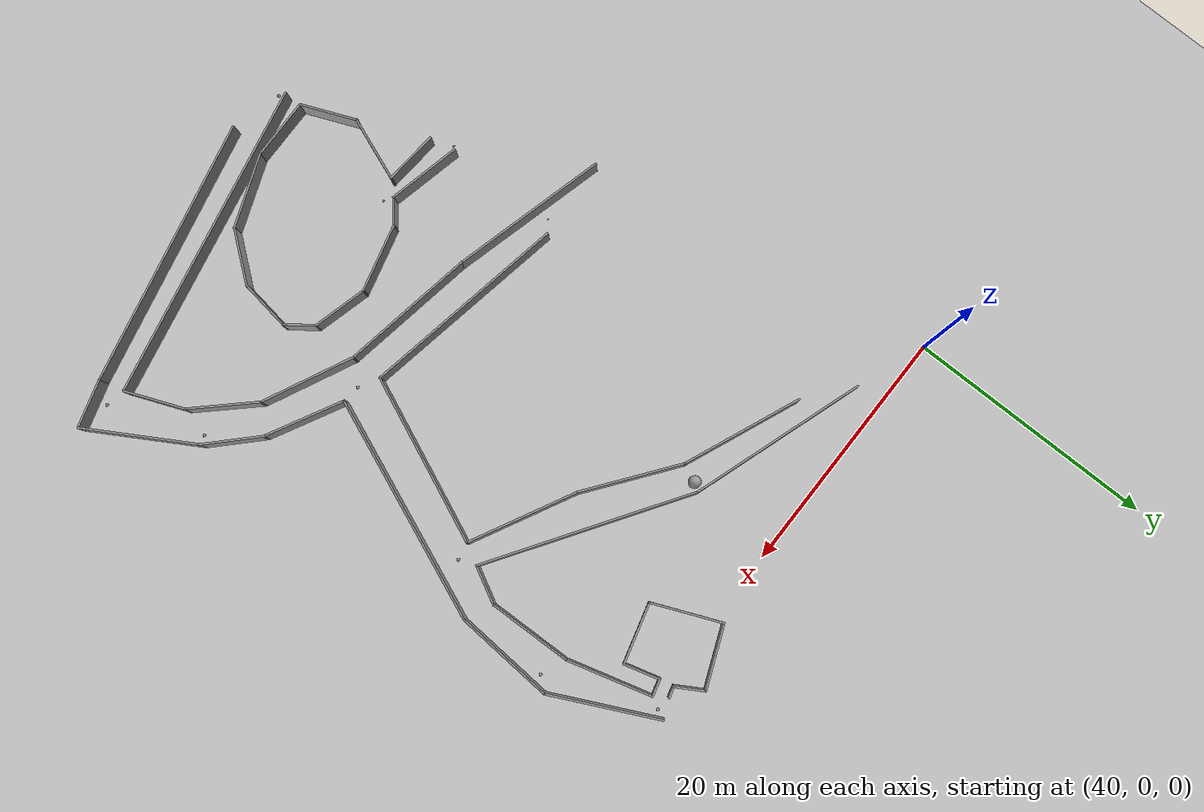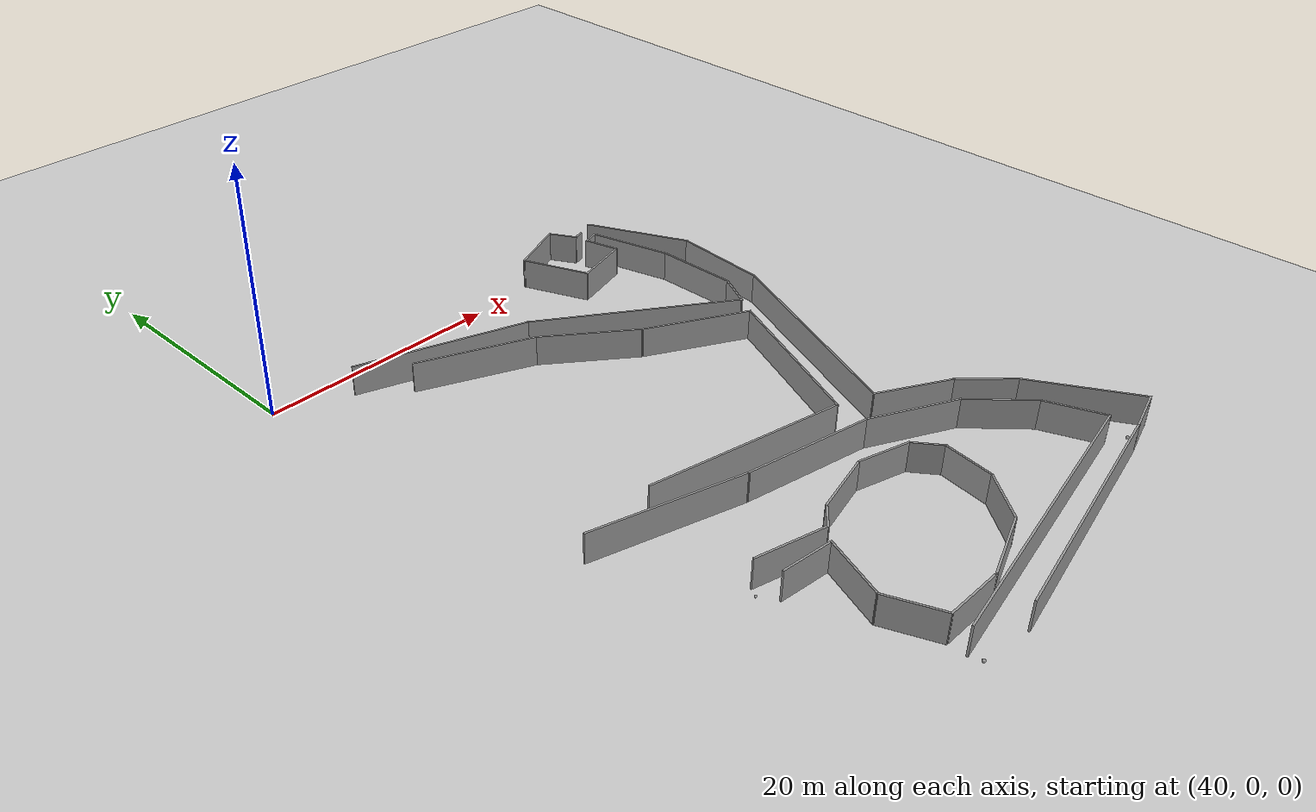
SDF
<sdf version="1.7">
 <world name="default">
  <model name="ground_plane">
   <static>1</static>
   <link name="link">
    <collision name="collision">
     <geometry><plane><normal>0 0 1</normal><size>100 100</size></plane></geometry>
     <surface><friction><ode><mu>100</mu><mu2>50</mu2></ode></friction></surface>
    </collision>
    <visual name="visual">
     <cast_shadows>0</cast_shadows>
     <geometry><plane><normal>0 0 1</normal><size>100 100</size></plane></geometry>
     <material>
      <script><uri>file://media/materials/scripts/gazebo.material</uri><name>Gazebo/Grey</name></script>
     </material>
    </visual>
   </link>
  </model>
  <model name="final_max_v1">
   <pose>-2.5231 0.6891 0 0 -0 0</pose>
   <link name="Wall_131">
    <collision name="Wall_131_Collision">
     <geometry><box><size>16.551 0.15 2.5</size></box></geometry>
     <pose>0 0 1.25 0 -0 0</pose>
    </collision>
    <visual name="Wall_131_Visual">
     <pose>0 0 1.25 0 -0 0</pose>
     <geometry><box><size>16.551 0.15 2.5</size></box></geometry>
     <material>
      <script><uri>file://media/materials/scripts/gazebo.material</uri><name>Gazebo/Grey</name></script>
      <ambient>1 1 1 1</ambient>
     </material>
     <meta><layer>0</layer></meta>
    </visual>
    <pose>61.4597 -29.6539 0 0 -0 2.9497</pose>
   </link>
   <link name="Wall_137">
    <collision name="Wall_137_Collision">
     <geometry><box><size>9.83843 0.15 2.5</size></box></geometry>
     <pose>0 0 1.25 0 -0 0</pose>
    </collision>
    <visual name="Wall_137_Visual">
     <pose>0 0 1.25 0 -0 0</pose>
     <geometry><box><size>9.83843 0.15 2.5</size></box></geometry>
     <material>
      <script><uri>file://media/materials/scripts/gazebo.material</uri><name>Gazebo/Grey</name></script>
      <ambient>1 1 1 1</ambient>
     </material>
     <meta><layer>0</layer></meta>
    </visual>
    <pose>56.2157 -7.61992 0 0 -0 -0.399904</pose>
   </link>
   <link name="Wall_138">
    <collision name="Wall_138_Collision">
     <geometry><box><size>8.35659 0.15 2.5</size></box></geometry>
     <pose>0 0 1.25 0 -0 0</pose>
    </collision>
    <visual name="Wall_138_Visual">
     <pose>0 0 1.25 0 -0 0</pose>
     <geometry><box><size>8.35659 0.15 2.5</size></box></geometry>
     <material>
      <script><uri>file://media/materials/scripts/gazebo.material</uri><name>Gazebo/Grey</name></script>
      <ambient>1 1 1 1</ambient>
     </material>
     <meta><layer>0</layer></meta>
    </visual>
    <pose>63.9437 -11.9899 0 0 -0 -0.650227</pose>
   </link>
   <link name="Wall_139">
    <collision name="Wall_139_Collision">
     <geometry><box><size>9.07969 0.15 2.5</size></box></geometry>
     <pose>0 0 1.25 0 -0 0</pose>
    </collision>
    <visual name="Wall_139_Visual">
     <pose>0 0 1.25 0 -0 0</pose>
     <geometry><box><size>9.07969 0.15 2.5</size></box></geometry>
     <material>
      <script><uri>file://media/materials/scripts/gazebo.material</uri><name>Gazebo/Grey</name></script>
      <ambient>1 1 1 1</ambient>
     </material>
     <meta><layer>0</layer></meta>
    </visual>
    <pose>71.1657 -16.5439 0 0 -0 -0.482079</pose>
   </link>
   <link name="Wall_140">
    <collision name="Wall_140_Collision">
     <geometry><box><size>13.9469 0.15 2.5</size></box></geometry>
     <pose>0 0 1.25 0 -0 0</pose>
    </collision>
    <visual name="Wall_140_Visual">
     <pose>0 0 1.25 0 -0 0</pose>
     <geometry><box><size>13.9469 0.15 2.5</size></box></geometry>
     <material>
      <script><uri>file://media/materials/scripts/gazebo.material</uri><name>Gazebo/Grey</name></script>
      <ambient>1 1 1 1</ambient>
     </material>
     <meta><layer>0</layer></meta>
    </visual>
    <pose>72.3157 -24.9159 0 0 -0 -1.9897</pose>
   </link>
   <link name="Wall_16">
    <collision name="Wall_16_Collision">
     <geometry><box><size>4.34473 0.15 2.5</size></box></geometry>
     <pose>0 0 1.25 0 -0 0</pose>
    </collision>
    <visual name="Wall_16_Visual">
     <pose>0 0 1.25 0 -0 0</pose>
     <geometry><box><size>4.34473 0.15 2.5</size></box></geometry>
     <material>
      <script><uri>file://media/materials/scripts/gazebo.material</uri><name>Gazebo/Grey</name></script>
      <ambient>1 1 1 1</ambient>
     </material>
     <meta><layer>0</layer></meta>
    </visual>
    <pose>55.1497 -39.6918 0 0 -0 -0.099669</pose>
   </link>
   <link name="Wall_17">
    <collision name="Wall_17_Collision">
     <geometry><box><size>5.3044 0.15 2.5</size></box></geometry>
     <pose>0 0 1.25 0 -0 0</pose>
    </collision>
    <visual name="Wall_17_Visual">
     <pose>0 0 1.25 0 -0 0</pose>
     <geometry><box><size>5.3044 0.15 2.5</size></box></geometry>
     <material>
      <script><uri>file://media/materials/scripts/gazebo.material</uri><name>Gazebo/Grey</name></script>
      <ambient>1 1 1 1</ambient>
     </material>
     <meta><layer>0</layer></meta>
    </visual>
    <pose>56.2976 -42.3005 0 0 -0 -1.94378</pose>
   </link>
   <link name="Wall_18">
    <collision name="Wall_18_Collision">
     <geometry><box><size>4.54873 0.15 2.5</size></box></geometry>
     <pose>0 0 1.25 0 -0 0</pose>
    </collision>
    <visual name="Wall_18_Visual">
     <pose>0 0 1.25 0 -0 0</pose>
     <geometry><box><size>4.54873 0.15 2.5</size></box></geometry>
     <material>
      <script><uri>file://media/materials/scripts/gazebo.material</uri><name>Gazebo/Grey</name></script>
      <ambient>1 1 1 1</ambient>
     </material>
     <meta><layer>0</layer></meta>
    </visual>
    <pose>56.1932 -46.7353 0 0 -0 -1.18148</pose>
   </link>
   <link name="Wall_21">
    <collision name="Wall_21_Collision">
     <geometry><box><size>4.95 0.15 2.5</size></box></geometry>
     <pose>0 0 1.25 0 -0 0</pose>
    </collision>
    <visual name="Wall_21_Visual">
     <pose>0 0 1.25 0 -0 0</pose>
     <geometry><box><size>4.95 0.15 2.5</size></box></geometry>
     <material>
      <script><uri>file://media/materials/scripts/gazebo.material</uri><name>Gazebo/Grey</name></script>
      <ambient>1 1 1 1</ambient>
     </material>
     <meta><layer>0</layer></meta>
    </visual>
    <pose>59.428 -48.7701 0 0 -0 0</pose>
   </link>
   <link name="Wall_22">
    <collision name="Wall_22_Collision">
     <geometry><box><size>6.02507 0.15 2.5</size></box></geometry>
     <pose>0 0 1.25 0 -0 0</pose>
    </collision>
    <visual name="Wall_22_Visual">
     <pose>0 0 1.25 0 -0 0</pose>
     <geometry><box><size>6.02507 0.15 2.5</size></box></geometry>
     <material>
      <script><uri>file://media/materials/scripts/gazebo.material</uri><name>Gazebo/Grey</name></script>
      <ambient>1 1 1 1</ambient>
     </material>
     <meta><layer>0</layer></meta>
    </visual>
    <pose>64.5932 -47.7788 0 0 -0 0.344219</pose>
   </link>
   <link name="Wall_23">
    <collision name="Wall_23_Collision">
     <geometry><box><size>4.59918 0.15 2.5</size></box></geometry>
     <pose>0 0 1.25 0 -0 0</pose>
    </collision>
    <visual name="Wall_23_Visual">
     <pose>0 0 1.25 0 -0 0</pose>
     <geometry><box><size>4.59918 0.15 2.5</size></box></geometry>
     <material>
      <script><uri>file://media/materials/scripts/gazebo.material</uri><name>Gazebo/Grey</name></script>
      <ambient>1 1 1 1</ambient>
     </material>
     <meta><layer>0</layer></meta>
    </visual>
    <pose>68.7671 -45.0658 0 0 -0 0.885067</pose>
   </link>
   <link name="Wall_24">
    <collision name="Wall_24_Collision">
     <geometry><box><size>4.16434 0.15 2.5</size></box></geometry>
     <pose>0 0 1.25 0 -0 0</pose>
    </collision>
    <visual name="Wall_24_Visual">
     <pose>0 0 1.25 0 -0 0</pose>
     <geometry><box><size>4.16434 0.15 2.5</size></box></geometry>
     <material>
      <script><uri>file://media/materials/scripts/gazebo.material</uri><name>Gazebo/Grey</name></script>
      <ambient>1 1 1 1</ambient>
     </material>
     <meta><layer>0</layer></meta>
    </visual>
    <pose>70.4889 -41.3614 0 0 -0 1.41419</pose>
   </link>
   <link name="Wall_25">
    <collision name="Wall_25_Collision">
     <geometry><box><size>2.6127 0.15 2.5</size></box></geometry>
     <pose>0 0 1.25 0 -0 0</pose>
    </collision>
    <visual name="Wall_25_Visual">
     <pose>0 0 1.25 0 -0 0</pose>
     <geometry><box><size>2.6127 0.15 2.5</size></box></geometry>
     <material>
      <script><uri>file://media/materials/scripts/gazebo.material</uri><name>Gazebo/Grey</name></script>
      <ambient>1 1 1 1</ambient>
     </material>
     <meta><layer>0</layer></meta>
    </visual>
    <pose>70.0715 -38.3875 0 0 -0 2.20582</pose>
   </link>
   <link name="Wall_26">
    <collision name="Wall_26_Collision">
     <geometry><box><size>4.47886 0.15 2.5</size></box></geometry>
     <pose>0 0 1.25 0 -0 0</pose>
    </collision>
    <visual name="Wall_26_Visual">
     <pose>0 0 1.25 0 -0 0</pose>
     <geometry><box><size>4.47886 0.15 2.5</size></box></geometry>
     <material>
      <script><uri>file://media/materials/scripts/gazebo.material</uri><name>Gazebo/Grey</name></script>
      <ambient>1 1 1 1</ambient>
     </material>
     <meta><layer>0</layer></meta>
    </visual>
    <pose>67.2541 -36.8223 0 0 -0 2.87323</pose>
   </link>
   <link name="Wall_27">
    <collision name="Wall_27_Collision">
     <geometry><box><size>5.51555 0.15 2.5</size></box></geometry>
     <pose>0 0 1.25 0 -0 0</pose>
    </collision>
    <visual name="Wall_27_Visual">
     <pose>0 0 1.25 0 -0 0</pose>
     <geometry><box><size>5.51555 0.15 2.5</size></box></geometry>
     <material>
      <script><uri>file://media/materials/scripts/gazebo.material</uri><name>Gazebo/Grey</name></script>
      <ambient>1 1 1 1</ambient>
     </material>
     <meta><layer>0</layer></meta>
    </visual>
    <pose>62.5584 -36.8745 0 0 -0 -2.90605</pose>
   </link>
   <link name="Wall_28">
    <collision name="Wall_28_Collision">
     <geometry><box><size>2.30119 0.15 2.5</size></box></geometry>
     <pose>0 0 1.25 0 -0 0</pose>
    </collision>
    <visual name="Wall_28_Visual">
     <pose>0 0 1.25 0 -0 0</pose>
     <geometry><box><size>2.30119 0.15 2.5</size></box></geometry>
     <material>
      <script><uri>file://media/materials/scripts/gazebo.material</uri><name>Gazebo/Grey</name></script>
      <ambient>1 1 1 1</ambient>
     </material>
     <meta><layer>0</layer></meta>
    </visual>
    <pose>59.1149 -38.1788 0 0 -0 -2.45928</pose>
   </link>
   <link name="Wall_29">
    <collision name="Wall_29_Collision">
     <geometry><box><size>5.94577 0.15 2.5</size></box></geometry>
     <pose>0 0 1.25 0 -0 0</pose>
    </collision>
    <visual name="Wall_29_Visual">
     <pose>0 0 1.25 0 -0 0</pose>
     <geometry><box><size>5.94577 0.15 2.5</size></box></geometry>
     <material>
      <script><uri>file://media/materials/scripts/gazebo.material</uri><name>Gazebo/Grey</name></script>
      <ambient>1 1 1 1</ambient>
     </material>
     <meta><layer>0</layer></meta>
    </visual>
    <pose>55.4628 -38.1788 0 0 -0 2.90535</pose>
   </link>
   <link name="Wall_301">
    <collision name="Wall_301_Collision">
     <geometry><box><size>14.3248 0.15 2.5</size></box></geometry>
     <pose>0 0 1.25 0 -0 0</pose>
    </collision>
    <visual name="Wall_301_Visual">
     <pose>0 0 1.25 0 -0 0</pose>
     <geometry><box><size>14.3248 0.15 2.5</size></box></geometry>
     <material>
      <script><uri>file://media/materials/scripts/gazebo.material</uri><name>Gazebo/Grey</name></script>
      <ambient>1 1 1 1</ambient>
     </material>
     <meta><layer>0</layer></meta>
    </visual>
    <pose>55.0472 -5.19275 0 0 -0 -0.327923</pose>
   </link>
   <link name="Wall_302">
    <collision name="Wall_302_Collision">
     <geometry><box><size>17.3014 0.15 2.5</size></box></geometry>
     <pose>0 0 1.25 0 -0 0</pose>
    </collision>
    <visual name="Wall_302_Visual">
     <pose>0 0 1.25 0 -0 0</pose>
     <geometry><box><size>17.3014 0.15 2.5</size></box></geometry>
     <material>
      <script><uri>file://media/materials/scripts/gazebo.material</uri><name>Gazebo/Grey</name></script>
      <ambient>1 1 1 1</ambient>
     </material>
     <meta><layer>0</layer></meta>
    </visual>
    <pose>68.8817 -12.2483 0 0 -0 -0.59024</pose>
   </link>
   <link name="Wall_303">
    <collision name="Wall_303_Collision">
     <geometry><box><size>3.26378 0.15 2.5</size></box></geometry>
     <pose>0 0 1.25 0 -0 0</pose>
    </collision>
    <visual name="Wall_303_Visual">
     <pose>0 0 1.25 0 -0 0</pose>
     <geometry><box><size>3.26378 0.15 2.5</size></box></geometry>
     <material>
      <script><uri>file://media/materials/scripts/gazebo.material</uri><name>Gazebo/Grey</name></script>
      <ambient>1 1 1 1</ambient>
     </material>
     <meta><layer>0</layer></meta>
    </visual>
    <pose>76.7485 -15.6525 0 0 -0 1.07401</pose>
   </link>
   <link name="Wall_304">
    <collision name="Wall_304_Collision">
     <geometry><box><size>6.84577 0.15 2.5</size></box></geometry>
     <pose>0 0 1.25 0 -0 0</pose>
    </collision>
    <visual name="Wall_304_Visual">
     <pose>0 0 1.25 0 -0 0</pose>
     <geometry><box><size>6.84577 0.15 2.5</size></box></geometry>
     <material>
      <script><uri>file://media/materials/scripts/gazebo.material</uri><name>Gazebo/Grey</name></script>
      <ambient>1 1 1 1</ambient>
     </material>
     <meta><layer>0</layer></meta>
    </visual>
    <pose>77.4382 -10.9364 0 0 -0 1.58642</pose>
   </link>
   <link name="Wall_47">
    <collision name="Wall_47_Collision">
     <geometry><box><size>12.6045 0.15 2.5</size></box></geometry>
     <pose>0 0 1.25 0 -0 0</pose>
    </collision>
    <visual name="Wall_47_Visual">
     <pose>0 0 1.25 0 -0 0</pose>
     <geometry><box><size>12.6045 0.15 2.5</size></box></geometry>
     <material>
      <script><uri>file://media/materials/scripts/gazebo.material</uri><name>Gazebo/Grey</name></script>
      <ambient>1 1 1 1</ambient>
     </material>
     <meta><layer>0</layer></meta>
    </visual>
    <pose>53.0319 -30.1375 0 0 -0 -0.269167</pose>
   </link>
   <link name="Wall_48">
    <collision name="Wall_48_Collision">
     <geometry><box><size>10.8145 0.15 2.5</size></box></geometry>
     <pose>0 0 1.25 0 -0 0</pose>
    </collision>
    <visual name="Wall_48_Visual">
     <pose>0 0 1.25 0 -0 0</pose>
     <geometry><box><size>10.8145 0.15 2.5</size></box></geometry>
     <material>
      <script><uri>file://media/materials/scripts/gazebo.material</uri><name>Gazebo/Grey</name></script>
      <ambient>1 1 1 1</ambient>
     </material>
     <meta><layer>0</layer></meta>
    </visual>
    <pose>64.2789 -32.7595 0 0 -0 -0.182168</pose>
   </link>
   <link name="Wall_49">
    <collision name="Wall_49_Collision">
     <geometry><box><size>7.67954 0.15 2.5</size></box></geometry>
     <pose>0 0 1.25 0 -0 0</pose>
    </collision>
    <visual name="Wall_49_Visual">
     <pose>0 0 1.25 0 -0 0</pose>
     <geometry><box><size>7.67954 0.15 2.5</size></box></geometry>
     <material>
      <script><uri>file://media/materials/scripts/gazebo.material</uri><name>Gazebo/Grey</name></script>
      <ambient>1 1 1 1</ambient>
     </material>
     <meta><layer>0</layer></meta>
    </visual>
    <pose>72.9039 -35.3815 0 0 -0 -0.455451</pose>
   </link>
   <link name="Wall_50">
    <collision name="Wall_50_Collision">
     <geometry><box><size>5.81305 0.15 2.5</size></box></geometry>
     <pose>0 0 1.25 0 -0 0</pose>
    </collision>
    <visual name="Wall_50_Visual">
     <pose>0 0 1.25 0 -0 0</pose>
     <geometry><box><size>5.81305 0.15 2.5</size></box></geometry>
     <material>
      <script><uri>file://media/materials/scripts/gazebo.material</uri><name>Gazebo/Grey</name></script>
      <ambient>1 1 1 1</ambient>
     </material>
     <meta><layer>0</layer></meta>
    </visual>
    <pose>78.2169 -39.1075 0 0 -0 -0.819867</pose>
   </link>
   <link name="Wall_54">
    <collision name="Wall_54_Collision">
     <geometry><box><size>21.4718 0.15 2.5</size></box></geometry>
     <pose>0 0 1.25 0 -0 0</pose>
    </collision>
    <visual name="Wall_54_Visual">
     <pose>0 0 1.25 0 -0 0</pose>
     <geometry><box><size>21.4718 0.15 2.5</size></box></geometry>
     <material>
      <script><uri>file://media/materials/scripts/gazebo.material</uri><name>Gazebo/Grey</name></script>
      <ambient>1 1 1 1</ambient>
     </material>
     <meta><layer>0</layer></meta>
    </visual>
    <pose>71.8997 -49.5997 0 0 -0 0.195805</pose>
   </link>
   <link name="Wall_60">
    <collision name="Wall_60_Collision">
     <geometry><box><size>25.436 0.15 2.5</size></box></geometry>
     <pose>0 0 1.25 0 -0 0</pose>
    </collision>
    <visual name="Wall_60_Visual">
     <pose>0 0 1.25 0 -0 0</pose>
     <geometry><box><size>25.436 0.15 2.5</size></box></geometry>
     <material>
      <script><uri>file://media/materials/scripts/gazebo.material</uri><name>Gazebo/Grey</name></script>
      <ambient>1 1 1 1</ambient>
     </material>
     <meta><layer>0</layer></meta>
    </visual>
    <pose>69.4626 -47.8893 0 0 -0 0.182813</pose>
   </link>
   <link name="Wall_62">
    <collision name="Wall_62_Collision">
     <geometry><box><size>4.8961 0.15 2.5</size></box></geometry>
     <pose>0 0 1.25 0 -0 0</pose>
    </collision>
    <visual name="Wall_62_Visual">
     <pose>0 0 1.25 0 -0 0</pose>
     <geometry><box><size>4.8961 0.15 2.5</size></box></geometry>
     <material>
      <script><uri>file://media/materials/scripts/gazebo.material</uri><name>Gazebo/Grey</name></script>
      <ambient>1 1 1 1</ambient>
     </material>
     <meta><layer>0</layer></meta>
    </visual>
    <pose>81.0219 -43.3842 0 0 -0 1.94751</pose>
   </link>
   <link name="Wall_65">
    <collision name="Wall_65_Collision">
     <geometry><box><size>4 0.15 2.5</size></box></geometry>
     <pose>0 0 1.25 0 -0 0</pose>
    </collision>
    <visual name="Wall_65_Visual">
     <pose>0 0 1.25 0 -0 0</pose>
     <geometry><box><size>4 0.15 2.5</size></box></geometry>
     <material>
      <script><uri>file://media/materials/scripts/gazebo.material</uri><name>Gazebo/Grey</name></script>
      <ambient>1 1 1 1</ambient>
     </material>
     <meta><layer>0</layer></meta>
    </visual>
    <pose>84.2164 -47.0273 0 0 -0 0.261799</pose>
   </link>
   <link name="Wall_66">
    <collision name="Wall_66_Collision">
     <geometry><box><size>9.25 0.15 2.5</size></box></geometry>
     <pose>0 0 1.25 0 -0 0</pose>
    </collision>
    <visual name="Wall_66_Visual">
     <pose>0 0 1.25 0 -0 0</pose>
     <geometry><box><size>9.25 0.15 2.5</size></box></geometry>
     <material>
      <script><uri>file://media/materials/scripts/gazebo.material</uri><name>Gazebo/Grey</name></script>
      <ambient>1 1 1 1</ambient>
     </material>
     <meta><layer>0</layer></meta>
    </visual>
    <pose>83.8008 -42.5887 0 0 -0 2.0944</pose>
   </link>
   <link name="Wall_67">
    <collision name="Wall_67_Collision">
     <geometry><box><size>4.91456 0.15 2.5</size></box></geometry>
     <pose>0 0 1.25 0 -0 0</pose>
    </collision>
    <visual name="Wall_67_Visual">
     <pose>0 0 1.25 0 -0 0</pose>
     <geometry><box><size>4.91456 0.15 2.5</size></box></geometry>
     <material>
      <script><uri>file://media/materials/scripts/gazebo.material</uri><name>Gazebo/Grey</name></script>
      <ambient>1 1 1 1</ambient>
     </material>
     <meta><layer>0</layer></meta>
    </visual>
    <pose>79.834 -36.9709 0 0 -0 2.36047</pose>
   </link>
   <link name="Wall_68">
    <collision name="Wall_68_Collision">
     <geometry><box><size>6.57108 0.15 2.5</size></box></geometry>
     <pose>0 0 1.25 0 -0 0</pose>
    </collision>
    <visual name="Wall_68_Visual">
     <pose>0 0 1.25 0 -0 0</pose>
     <geometry><box><size>6.57108 0.15 2.5</size></box></geometry>
     <material>
      <script><uri>file://media/materials/scripts/gazebo.material</uri><name>Gazebo/Grey</name></script>
      <ambient>1 1 1 1</ambient>
     </material>
     <meta><layer>0</layer></meta>
    </visual>
    <pose>75.3133 -33.7756 0 0 -0 2.64911</pose>
   </link>
   <link name="Wall_69">
    <collision name="Wall_69_Collision">
     <geometry><box><size>18.5927 0.15 2.5</size></box></geometry>
     <pose>0 0 1.25 0 -0 0</pose>
    </collision>
    <visual name="Wall_69_Visual">
     <pose>0 0 1.25 0 -0 0</pose>
     <geometry><box><size>18.5927 0.15 2.5</size></box></geometry>
     <material>
      <script><uri>file://media/materials/scripts/gazebo.material</uri><name>Gazebo/Grey</name></script>
      <ambient>1 1 1 1</ambient>
     </material>
     <meta><layer>0</layer></meta>
    </visual>
    <pose>76.082 -23.767 0 0 -0 1.17001</pose>
   </link>
   <link name="Wall_70">
    <collision name="Wall_70_Collision">
     <geometry><box><size>8.11035 0.15 2.5</size></box></geometry>
     <pose>0 0 1.25 0 -0 0</pose>
    </collision>
    <visual name="Wall_70_Visual">
     <pose>0 0 1.25 0 -0 0</pose>
     <geometry><box><size>8.11035 0.15 2.5</size></box></geometry>
     <material>
      <script><uri>file://media/materials/scripts/gazebo.material</uri><name>Gazebo/Grey</name></script>
      <ambient>1 1 1 1</ambient>
     </material>
     <meta><layer>0</layer></meta>
    </visual>
    <pose>79.997 -11.3089 0 0 -0 1.49097</pose>
   </link>
   <link name="Wall_700">
    <collision name="Wall_700_Collision">
     <geometry><box><size>9.04858 0.15 2.5</size></box></geometry>
     <pose>0 0 1.25 0 -0 0</pose>
    </collision>
    <visual name="Wall_700_Visual">
     <pose>0 0 1.25 0 -0 0</pose>
     <geometry><box><size>9.04858 0.15 2.5</size></box></geometry>
     <material>
      <script><uri>file://media/materials/scripts/gazebo.material</uri><name>Gazebo/Grey</name></script>
      <ambient>1 1 1 1</ambient>
     </material>
     <meta><layer>0</layer></meta>
    </visual>
    <pose>78.4044 -3.3229 0 0 -0 -1.1271</pose>
   </link>
   <link name="Wall_702">
    <collision name="Wall_702_Collision">
     <geometry><box><size>7 0.15 2.5</size></box></geometry>
     <pose>0 0 1.25 0 -0 0</pose>
    </collision>
    <visual name="Wall_702_Visual">
     <pose>0 0 1.25 0 -0 0</pose>
     <geometry><box><size>7 0.15 2.5</size></box></geometry>
     <material>
      <script><uri>file://media/materials/scripts/gazebo.material</uri><name>Gazebo/Grey</name></script>
      <ambient>1 1 1 1</ambient>
     </material>
     <meta><layer>0</layer></meta>
    </visual>
    <pose>76.4994 -4.28059 0 0 -0 1.8326</pose>
   </link>
   <link name="Wall_703">
    <collision name="Wall_703_Collision">
     <geometry><box><size>1.5 0.15 2.5</size></box></geometry>
     <pose>0 0 1.25 0 -0 0</pose>
    </collision>
    <visual name="Wall_703_Visual">
     <pose>0 0 1.25 0 -0 0</pose>
     <geometry><box><size>1.5 0.15 2.5</size></box></geometry>
     <material>
      <script><uri>file://media/materials/scripts/gazebo.material</uri><name>Gazebo/Grey</name></script>
      <ambient>1 1 1 1</ambient>
     </material>
     <meta><layer>0</layer></meta>
    </visual>
    <pose>74.961 -1.147 0 0 -0 -2.87979</pose>
   </link>
   <link name="Wall_704">
    <collision name="Wall_704_Collision">
     <geometry><box><size>3 0.15 2.5</size></box></geometry>
     <pose>0 0 1.25 0 -0 0</pose>
    </collision>
    <visual name="Wall_704_Visual">
     <pose>0 0 1.25 0 -0 0</pose>
     <geometry><box><size>3 0.15 2.5</size></box></geometry>
     <material>
      <script><uri>file://media/materials/scripts/gazebo.material</uri><name>Gazebo/Grey</name></script>
      <ambient>1 1 1 1</ambient>
     </material>
     <meta><layer>0</layer></meta>
    </visual>
    <pose>74.6778 -2.69814 0 0 -0 -1.309</pose>
   </link>
   <link name="Wall_705">
    <collision name="Wall_705_Collision">
     <geometry><box><size>5 0.15 2.5</size></box></geometry>
     <pose>0 0 1.25 0 -0 0</pose>
    </collision>
    <visual name="Wall_705_Visual">
     <pose>0 0 1.25 0 -0 0</pose>
     <geometry><box><size>5 0.15 2.5</size></box></geometry>
     <material>
      <script><uri>file://media/materials/scripts/gazebo.material</uri><name>Gazebo/Grey</name></script>
      <ambient>1 1 1 1</ambient>
     </material>
     <meta><layer>0</layer></meta>
    </visual>
    <pose>72.7042 -4.70223 0 0 -0 -2.87979</pose>
   </link>
   <link name="Wall_706">
    <collision name="Wall_706_Collision">
     <geometry><box><size>5.81611 0.15 2.5</size></box></geometry>
     <pose>0 0 1.25 0 -0 0</pose>
    </collision>
    <visual name="Wall_706_Visual">
     <pose>0 0 1.25 0 -0 0</pose>
     <geometry><box><size>5.81611 0.15 2.5</size></box></geometry>
     <material>
      <script><uri>file://media/materials/scripts/gazebo.material</uri><name>Gazebo/Grey</name></script>
      <ambient>1 1 1 1</ambient>
     </material>
     <meta><layer>0</layer></meta>
    </visual>
    <pose>69.2813 -2.71095 0 0 -0 1.9621</pose>
   </link>
   <link name="Wall_707">
    <collision name="Wall_707_Collision">
     <geometry><box><size>5.26143 0.15 2.5</size></box></geometry>
     <pose>0 0 1.25 0 -0 0</pose>
    </collision>
    <visual name="Wall_707_Visual">
     <pose>0 0 1.25 0 -0 0</pose>
     <geometry><box><size>5.26143 0.15 2.5</size></box></geometry>
     <material>
      <script><uri>file://media/materials/scripts/gazebo.material</uri><name>Gazebo/Grey</name></script>
      <ambient>1 1 1 1</ambient>
     </material>
     <meta><layer>0</layer></meta>
    </visual>
    <pose>70.5667 0.874644 0 0 -0 0.3879</pose>
   </link>
   <link name="Wall_708">
    <collision name="Wall_708_Collision">
     <geometry><box><size>2.5 0.15 2.5</size></box></geometry>
     <pose>0 0 1.25 0 -0 0</pose>
    </collision>
    <visual name="Wall_708_Visual">
     <pose>0 0 1.25 0 -0 0</pose>
     <geometry><box><size>2.5 0.15 2.5</size></box></geometry>
     <material>
      <script><uri>file://media/materials/scripts/gazebo.material</uri><name>Gazebo/Grey</name></script>
      <ambient>1 1 1 1</ambient>
     </material>
     <meta><layer>0</layer></meta>
    </visual>
    <pose>73.52 0.823752 0 0 -0 -1.0472</pose>
   </link>
   <link name="Wall_709">
    <collision name="Wall_709_Collision">
     <geometry><box><size>1 0.15 2.5</size></box></geometry>
     <pose>0 0 1.25 0 -0 0</pose>
    </collision>
    <visual name="Wall_709_Visual">
     <pose>0 0 1.25 0 -0 0</pose>
     <geometry><box><size>1 0.15 2.5</size></box></geometry>
     <material>
      <script><uri>file://media/materials/scripts/gazebo.material</uri><name>Gazebo/Grey</name></script>
      <ambient>1 1 1 1</ambient>
     </material>
     <meta><layer>0</layer></meta>
    </visual>
    <pose>74.518 -0.083829 0 0 -0 0.261799</pose>
   </link>
   <static>1</static>
  </model>
  <model name="id_106">
   <pose>49.6491 -37.5075 0.098466 0 -0 0</pose>
   <link name="link">
    <inertial>
     <mass>1</mass>
     <inertia><ixx>0.1</ixx><ixy>0</ixy><ixz>0</ixz><iyy>0.1</iyy><iyz>0</iyz><izz>0.1</izz></inertia>
    </inertial>
    <collision name="collision"><geometry><sphere><radius>0.0984663</radius></sphere></geometry></collision>
    <visual name="visual">
     <geometry><sphere><radius>0.0984663</radius></sphere></geometry>
     <material>
      <script><name>Gazebo/Grey</name><uri>file://media/materials/scripts/gazebo.material</uri></script>
     </material>
    </visual>
   </link>
  </model>
  <model name="id_107">
   <pose>56.2241 -39.1105 0.098466 0 -0 0</pose>
   <link name="link">
    <inertial>
     <mass>1</mass>
     <inertia><ixx>0.1</ixx><ixy>0</ixy><ixz>0</ixz><iyy>0.1</iyy><iyz>0</iyz><izz>0.1</izz></inertia>
    </inertial>
    <collision name="collision"><geometry><sphere><radius>0.0984663</radius></sphere></geometry></collision>
    <visual name="visual">
     <geometry><sphere><radius>0.0984663</radius></sphere></geometry>
     <material>
      <script><name>Gazebo/Grey</name><uri>file://media/materials/scripts/gazebo.material</uri></script>
     </material>
    </visual>
   </link>
  </model>
  <model name="id_82">
   <pose>54.7451 -50.4507 0.128457 0 -0 0</pose>
   <link name="link">
    <inertial>
     <mass>1</mass>
     <inertia><ixx>0.1</ixx><ixy>0</ixy><ixz>0</ixz><iyy>0.1</iyy><iyz>0</iyz><izz>0.1</izz></inertia>
    </inertial>
    <collision name="collision"><geometry><sphere><radius>0.128457</radius></sphere></geometry></collision>
    <visual name="visual">
     <geometry><sphere><radius>0.128457</radius></sphere></geometry>
     <material>
      <script><name>Gazebo/Grey</name><uri>file://media/materials/scripts/gazebo.material</uri></script>
     </material>
    </visual>
   </link>
  </model>
  <model name="id_83">
   <pose>81.1317 -45.843 0.128457 0 -0 0</pose>
   <link name="link">
    <inertial>
     <mass>1</mass>
     <inertia><ixx>0.1</ixx><ixy>0</ixy><ixz>0</ixz><iyy>0.1</iyy><iyz>0</iyz><izz>0.1</izz></inertia>
    </inertial>
    <collision name="collision"><geometry><sphere><radius>0.128457</radius></sphere></geometry></collision>
    <visual name="visual">
     <geometry><sphere><radius>0.128457</radius></sphere></geometry>
     <material>
      <script><name>Gazebo/Grey</name><uri>file://media/materials/scripts/gazebo.material</uri></script>
     </material>
    </visual>
   </link>
  </model>
  <model name="id_84">
   <pose>78.4494 -38.6232 0.128457 0 -0 0</pose>
   <link name="link">
    <inertial>
     <mass>1</mass>
     <inertia><ixx>0.1</ixx><ixy>0</ixy><ixz>0</ixz><iyy>0.1</iyy><iyz>0</iyz><izz>0.1</izz></inertia>
    </inertial>
    <collision name="collision"><geometry><sphere><radius>0.128457</radius></sphere></geometry></collision>
    <visual name="visual">
     <geometry><sphere><radius>0.128457</radius></sphere></geometry>
     <material>
      <script><name>Gazebo/Grey</name><uri>file://media/materials/scripts/gazebo.material</uri></script>
     </material>
    </visual>
   </link>
  </model>
  <model name="id_85">
   <pose>68.5495 -31.7725 0.128457 0 -0 0</pose>
   <link name="link">
    <inertial>
     <mass>1</mass>
     <inertia><ixx>0.1</ixx><ixy>0</ixy><ixz>0</ixz><iyy>0.1</iyy><iyz>0</iyz><izz>0.1</izz></inertia>
    </inertial>
    <collision name="collision"><geometry><sphere><radius>0.128457</radius></sphere></geometry></collision>
    <visual name="visual">
     <geometry><sphere><radius>0.128457</radius></sphere></geometry>
     <material>
      <script><name>Gazebo/Grey</name><uri>file://media/materials/scripts/gazebo.material</uri></script>
     </material>
    </visual>
   </link>
  </model>
  <model name="id_86">
   <pose>74.066 -17.8077 0.128457 0 -0 0</pose>
   <link name="link">
    <inertial>
     <mass>1</mass>
     <inertia><ixx>0.1</ixx><ixy>0</ixy><ixz>0</ixz><iyy>0.1</iyy><iyz>0</iyz><izz>0.1</izz></inertia>
    </inertial>
    <collision name="collision"><geometry><sphere><radius>0.128457</radius></sphere></geometry></collision>
    <visual name="visual">
     <geometry><sphere><radius>0.128457</radius></sphere></geometry>
     <material>
      <script><name>Gazebo/Grey</name><uri>file://media/materials/scripts/gazebo.material</uri></script>
     </material>
    </visual>
   </link>
  </model>
  <model name="id_88">
   <pose>77.001 -7.73036 0.128457 0 -0 0</pose>
   <link name="link">
    <inertial>
     <mass>1</mass>
     <inertia><ixx>0.1</ixx><ixy>0</ixy><ixz>0</ixz><iyy>0.1</iyy><iyz>0</iyz><izz>0.1</izz></inertia>
    </inertial>
    <collision name="collision"><geometry><sphere><radius>0.128457</radius></sphere></geometry></collision>
    <visual name="visual">
     <geometry><sphere><radius>0.128457</radius></sphere></geometry>
     <material>
      <script><name>Gazebo/Grey</name><uri>file://media/materials/scripts/gazebo.material</uri></script>
     </material>
    </visual>
   </link>
  </model>
  <model name="id_89">
   <pose>73.6851 0.702659 0.128457 0 -0 0</pose>
   <link name="link">
    <inertial>
     <mass>1</mass>
     <inertia><ixx>0.1</ixx><ixy>0</ixy><ixz>0</ixz><iyy>0.1</iyy><iyz>0</iyz><izz>0.1</izz></inertia>
    </inertial>
    <collision name="collision"><geometry><sphere><radius>0.128457</radius></sphere></geometry></collision>
    <visual name="visual">
     <geometry><sphere><radius>0.128457</radius></sphere></geometry>
     <material>
      <script><name>Gazebo/Grey</name><uri>file://media/materials/scripts/gazebo.material</uri></script>
     </material>
    </visual>
   </link>
  </model>
  <model name="id_5">
   <pose>49.6685 -28.3869 0.059356 0 -0 0</pose>
   <link name="link">
    <inertial>
     <mass>1</mass>
     <inertia><ixx>0.1</ixx><ixy>0</ixy><ixz>0</ixz><iyy>0.1</iyy><iyz>0</iyz><izz>0.1</izz></inertia>
    </inertial>
    <collision name="collision"><geometry><sphere><radius>0.059356</radius></sphere></geometry></collision>
    <visual name="visual">
     <geometry><sphere><radius>0.059356</radius></sphere></geometry>
     <material>
      <script><name>Gazebo/Grey</name><uri>file://media/materials/scripts/gazebo.material</uri></script>
     </material>
    </visual>
   </link>
  </model>
  <model name="id_99">
   <pose>58.6854 -7.41795 0.5 0 -0 0</pose>
   <link name="link">
    <inertial>
     <mass>1</mass>
     <inertia><ixx>0.1</ixx><ixy>0</ixy><ixz>0</ixz><iyy>0.1</iyy><iyz>0</iyz><izz>0.1</izz></inertia>
    </inertial>
    <collision name="collision"><geometry><sphere><radius>0.5</radius></sphere></geometry></collision>
    <visual name="visual">
     <geometry><sphere><radius>0.5</radius></sphere></geometry>
     <material>
      <script><name>Gazebo/Grey</name><uri>file://media/materials/scripts/gazebo.material</uri></script>
     </material>
    </visual>
   </link>
  </model>
 </world>
</sdf>
